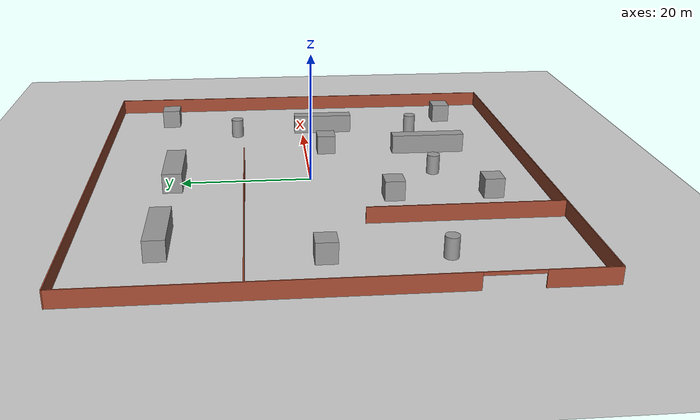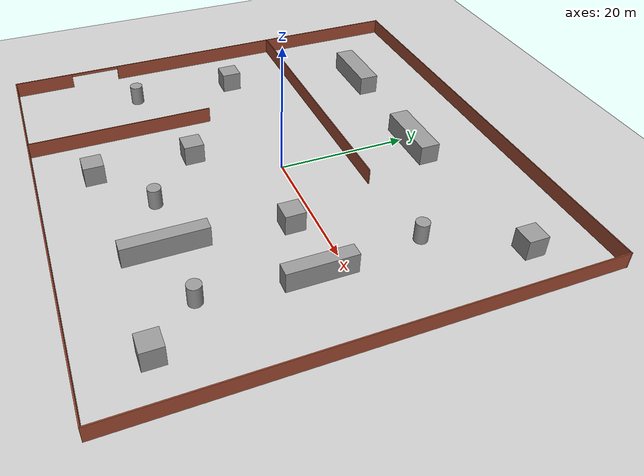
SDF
<sdf version="1.7">
 <world name="default">
  <light name="sun" type="directional">
   <pose>0 0 10 0 -0 0</pose>
   <diffuse>0.8 0.8 0.8 1</diffuse>
   <specular>0.2 0.2 0.2 1</specular>
   <attenuation>
    <range>1000</range>
    <constant>0.9</constant>
    <linear>0.01</linear>
    <quadratic>0.001</quadratic>
   </attenuation>
   <direction>-0.5 0.1 -0.9</direction>
   <spot><inner_angle>0</inner_angle><outer_angle>0</outer_angle><falloff>0</falloff></spot>
  </light>
  <model name="ground_plane">
   <static>1</static>
   <link name="link">
    <collision name="collision">
     <geometry><plane><normal>0 0 1</normal><size>100 100</size></plane></geometry>
     <surface>
      <contact><collide_bitmask>65535</collide_bitmask></contact>
      <friction><ode><mu>100</mu><mu2>50</mu2></ode></friction>
     </surface>
    </collision>
    <visual name="visual">
     <cast_shadows>0</cast_shadows>
     <geometry><plane><normal>0 0 1</normal><size>100 100</size></plane></geometry>
     <material>
      <script><uri>file://media/materials/scripts/gazebo.material</uri><name>Gazebo/Grey</name></script>
     </material>
    </visual>
   </link>
  </model>
  <gravity>0 0 -9.8</gravity>
  <magnetic_field>6e-06 2.3e-05 -4.2e-05</magnetic_field>
  <atmosphere type="adiabatic"/>
  <physics type="ode">
   <max_step_size>0.001</max_step_size>
   <real_time_factor>1</real_time_factor>
   <real_time_update_rate>1000</real_time_update_rate>
  </physics>
  <scene><ambient>0.4 0.4 0.4 1</ambient><background>0.7 0.7 0.7 1</background><shadows>1</shadows></scene>
  <spherical_coordinates>
   <surface_model>EARTH_WGS84</surface_model>
   <latitude_deg>0</latitude_deg>
   <longitude_deg>0</longitude_deg>
   <elevation>0</elevation>
   <heading_deg>0</heading_deg>
  </spherical_coordinates>
  <model name="Automan_factory">
   <pose>0.163273 -0.822577 0 0 -0 0</pose>
   <link name="Wall_0">
    <pose>-34.8066 -0.022736 0 0 -0 -1.5708</pose>
    <visual name="Wall_0_Visual_0">
     <pose>-8.60646 0 1.25 0 -0 0</pose>
     <geometry><box><size>51.0371 0.15 2.5</size></box></geometry>
     <material>
      <script><uri>file://media/materials/scripts/gazebo.material</uri><name>Gazebo/Bricks</name></script>
      <ambient>1 1 1 1</ambient>
     </material>
     <meta><layer>0</layer></meta>
    </visual>
    <collision name="Wall_0_Collision_0">
     <geometry><box><size>51.0371 0.15 2.5</size></box></geometry>
     <pose>-8.60646 0 1.25 0 -0 0</pose>
    </collision>
    <visual name="Wall_0_Visual_1">
     <pose>29.425 0 1.25 0 -0 0</pose>
     <geometry><box><size>9.39992 0.15 2.5</size></box></geometry>
     <material>
      <script><uri>file://media/materials/scripts/gazebo.material</uri><name>Gazebo/Bricks</name></script>
      <ambient>1 1 1 1</ambient>
     </material>
     <meta><layer>0</layer></meta>
    </visual>
    <collision name="Wall_0_Collision_1">
     <geometry><box><size>9.39992 0.15 2.5</size></box></geometry>
     <pose>29.425 0 1.25 0 -0 0</pose>
    </collision>
    <visual name="Wall_0_Visual_2">
     <pose>20.8186 0 2.25 0 -0 0</pose>
     <geometry><box><size>7.81299 0.15 0.5</size></box></geometry>
     <material>
      <script><uri>file://media/materials/scripts/gazebo.material</uri><name>Gazebo/Bricks</name></script>
      <ambient>1 1 1 1</ambient>
     </material>
     <meta><layer>0</layer></meta>
    </visual>
    <collision name="Wall_0_Collision_2">
     <geometry><box><size>7.81299 0.15 0.5</size></box></geometry>
     <pose>20.8186 0 2.25 0 -0 0</pose>
    </collision>
   </link>
   <link name="Wall_2">
    <collision name="Wall_2_Collision">
     <geometry><box><size>69.7632 0.15 2.5</size></box></geometry>
     <pose>0 0 1.25 0 -0 0</pose>
    </collision>
    <visual name="Wall_2_Visual">
     <pose>0 0 1.25 0 -0 0</pose>
     <geometry><box><size>69.7632 0.15 2.5</size></box></geometry>
     <material>
      <script><uri>file://media/materials/scripts/gazebo.material</uri><name>Gazebo/Bricks</name></script>
      <ambient>1 1 1 1</ambient>
     </material>
     <meta><layer>0</layer></meta>
    </visual>
    <pose>-2e-06 -34.05 0 0 -0 0.000653</pose>
   </link>
   <link name="Wall_27">
    <collision name="Wall_27_Collision">
     <geometry><box><size>28.5 0.15 2.5</size></box></geometry>
     <pose>0 0 1.25 0 -0 0</pose>
    </collision>
    <visual name="Wall_27_Visual">
     <pose>0 0 1.25 0 -0 0</pose>
     <geometry><box><size>28.5 0.15 2.5</size></box></geometry>
     <material>
      <script><uri>file://media/materials/scripts/gazebo.material</uri><name>Gazebo/Bricks</name></script>
      <ambient>1 1 1 1</ambient>
     </material>
     <meta><layer>0</layer></meta>
    </visual>
    <pose>-15.9813 -19.8691 0 0 -0 1.5708</pose>
   </link>
   <link name="Wall_29">
    <collision name="Wall_29_Collision">
     <geometry><box><size>42.75 0.15 2.5</size></box></geometry>
     <pose>0 0 1.25 0 -0 0</pose>
    </collision>
    <visual name="Wall_29_Visual">
     <pose>0 0 1.25 0 -0 0</pose>
     <geometry><box><size>42.75 0.15 2.5</size></box></geometry>
     <material>
      <script><uri>file://media/materials/scripts/gazebo.material</uri><name>Gazebo/Bricks</name></script>
      <ambient>1 1 1 1</ambient>
     </material>
     <meta><layer>0</layer></meta>
    </visual>
    <pose>-13.3654 11.1808 0 0 -0 0</pose>
   </link>
   <link name="Wall_3">
    <collision name="Wall_3_Collision">
     <geometry><box><size>68.25 0.15 2.5</size></box></geometry>
     <pose>0 0 1.25 0 -0 0</pose>
    </collision>
    <visual name="Wall_3_Visual">
     <pose>0 0 1.25 0 -0 0</pose>
     <geometry><box><size>68.25 0.15 2.5</size></box></geometry>
     <material>
      <script><uri>file://media/materials/scripts/gazebo.material</uri><name>Gazebo/Bricks</name></script>
      <ambient>1 1 1 1</ambient>
     </material>
     <meta><layer>0</layer></meta>
    </visual>
    <pose>34.8066 0.022736 0 0 -0 1.5708</pose>
   </link>
   <link name="Wall_4">
    <collision name="Wall_4_Collision">
     <geometry><box><size>69.7632 0.15 2.5</size></box></geometry>
     <pose>0 0 1.25 0 -0 0</pose>
    </collision>
    <visual name="Wall_4_Visual">
     <pose>0 0 1.25 0 -0 0</pose>
     <geometry><box><size>69.7632 0.15 2.5</size></box></geometry>
     <material>
      <script><uri>file://media/materials/scripts/gazebo.material</uri><name>Gazebo/Bricks</name></script>
      <ambient>1 1 1 1</ambient>
     </material>
     <meta><layer>0</layer></meta>
    </visual>
    <pose>-2e-06 34.05 0 0 -0 -3.14094</pose>
   </link>
   <static>1</static>
  </model>
  <model name="Automan_factory_with_obstacles.world">
   <link name="link_0_clone">
    <inertial>
     <mass>1</mass>
     <inertia><ixx>0.145833</ixx><ixy>0</ixy><ixz>0</ixz><iyy>0.145833</iyy><iyz>0</iyz><izz>0.125</izz></inertia>
    </inertial>
    <pose>28.3867 -2.06746 -0 0 -0 0</pose>
    <visual name="visual">
     <geometry><cylinder><radius>1</radius><length>5</length></cylinder></geometry>
     <material>
      <lighting>1</lighting>
      <script><uri>file://media/materials/scripts/gazebo.material</uri><name>Gazebo/Grey</name></script>
      <shader type="pixel"><normal_map>__default__</normal_map></shader>
      <ambient>0.3 0.3 0.3 1</ambient>
      <diffuse>0.7 0.7 0.7 1</diffuse>
      <specular>0.01 0.01 0.01 1</specular>
      <emissive>0 0 0 1</emissive>
     </material>
    </visual>
    <collision name="collision">
     <geometry><cylinder><radius>1</radius><length>5</length></cylinder></geometry>
     <surface>
      <friction>
       <ode><mu>1</mu><mu2>1</mu2><fdir1>0 0 0</fdir1><slip1>0</slip1><slip2>0</slip2></ode>
       <torsional>
        <coefficient>1</coefficient>
        <patch_radius>0</patch_radius>
        <surface_radius>0</surface_radius>
        <use_patch_radius>1</use_patch_radius>
        <ode><slip>0</slip></ode>
       </torsional>
      </friction>
      <bounce><restitution_coefficient>0</restitution_coefficient><threshold>1e+06</threshold></bounce>
      <contact>
       <collide_without_contact>0</collide_without_contact>
       <collide_without_contact_bitmask>1</collide_without_contact_bitmask>
       <collide_bitmask>1</collide_bitmask>
       <ode>
        <soft_cfm>0</soft_cfm>
        <soft_erp>0.2</soft_erp>
        <kp>1e+13</kp>
        <kd>1</kd>
        <max_vel>0.01</max_vel>
        <min_depth>0</min_depth>
       </ode>
       <bullet>
        <split_impulse>1</split_impulse>
        <split_impulse_penetration_threshold>-0.01</split_impulse_penetration_threshold>
        <soft_cfm>0</soft_cfm>
        <soft_erp>0.2</soft_erp>
        <kp>1e+13</kp>
        <kd>1</kd>
       </bullet>
      </contact>
     </surface>
    </collision>
   </link>
   <link name="link_0_clone_0">
    <inertial>
     <mass>1</mass>
     <inertia><ixx>0.145833</ixx><ixy>0</ixy><ixz>0</ixz><iyy>0.145833</iyy><iyz>0</iyz><izz>0.125</izz></inertia>
    </inertial>
    <pose>47.7915 29.0445 0 0 -0 0</pose>
    <visual name="visual">
     <geometry><cylinder><radius>1</radius><length>5</length></cylinder></geometry>
     <material>
      <lighting>1</lighting>
      <script><uri>file://media/materials/scripts/gazebo.material</uri><name>Gazebo/Grey</name></script>
      <shader type="pixel"><normal_map>__default__</normal_map></shader>
      <ambient>0.3 0.3 0.3 1</ambient>
      <diffuse>0.7 0.7 0.7 1</diffuse>
      <specular>0.01 0.01 0.01 1</specular>
      <emissive>0 0 0 1</emissive>
     </material>
    </visual>
    <collision name="collision">
     <geometry><cylinder><radius>1</radius><length>5</length></cylinder></geometry>
     <surface>
      <friction>
       <ode><mu>1</mu><mu2>1</mu2><fdir1>0 0 0</fdir1><slip1>0</slip1><slip2>0</slip2></ode>
       <torsional>
        <coefficient>1</coefficient>
        <patch_radius>0</patch_radius>
        <surface_radius>0</surface_radius>
        <use_patch_radius>1</use_patch_radius>
        <ode><slip>0</slip></ode>
       </torsional>
      </friction>
      <bounce><restitution_coefficient>0</restitution_coefficient><threshold>1e+06</threshold></bounce>
      <contact>
       <collide_without_contact>0</collide_without_contact>
       <collide_without_contact_bitmask>1</collide_without_contact_bitmask>
       <collide_bitmask>1</collide_bitmask>
       <ode>
        <soft_cfm>0</soft_cfm>
        <soft_erp>0.2</soft_erp>
        <kp>1e+13</kp>
        <kd>1</kd>
        <max_vel>0.01</max_vel>
        <min_depth>0</min_depth>
       </ode>
       <bullet>
        <split_impulse>1</split_impulse>
        <split_impulse_penetration_threshold>-0.01</split_impulse_penetration_threshold>
        <soft_cfm>0</soft_cfm>
        <soft_erp>0.2</soft_erp>
        <kp>1e+13</kp>
        <kd>1</kd>
       </bullet>
      </contact>
     </surface>
    </collision>
   </link>
   <link name="link_0_clone_clone">
    <inertial>
     <mass>1</mass>
     <inertia><ixx>0.145833</ixx><ixy>0</ixy><ixz>0</ixz><iyy>0.145833</iyy><iyz>0</iyz><izz>0.125</izz></inertia>
    </inertial>
    <pose>47.8041 -1.80398 -0 0 -0 0</pose>
    <visual name="visual">
     <geometry><cylinder><radius>1</radius><length>5</length></cylinder></geometry>
     <material>
      <lighting>1</lighting>
      <script><uri>file://media/materials/scripts/gazebo.material</uri><name>Gazebo/Grey</name></script>
      <shader type="pixel"><normal_map>__default__</normal_map></shader>
      <ambient>0.3 0.3 0.3 1</ambient>
      <diffuse>0.7 0.7 0.7 1</diffuse>
      <specular>0.01 0.01 0.01 1</specular>
      <emissive>0 0 0 1</emissive>
     </material>
    </visual>
    <collision name="collision">
     <geometry><cylinder><radius>1</radius><length>5</length></cylinder></geometry>
     <surface>
      <friction>
       <ode><mu>1</mu><mu2>1</mu2><fdir1>0 0 0</fdir1><slip1>0</slip1><slip2>0</slip2></ode>
       <torsional>
        <coefficient>1</coefficient>
        <patch_radius>0</patch_radius>
        <surface_radius>0</surface_radius>
        <use_patch_radius>1</use_patch_radius>
        <ode><slip>0</slip></ode>
       </torsional>
      </friction>
      <bounce><restitution_coefficient>0</restitution_coefficient><threshold>1e+06</threshold></bounce>
      <contact>
       <collide_without_contact>0</collide_without_contact>
       <collide_without_contact_bitmask>1</collide_without_contact_bitmask>
       <collide_bitmask>1</collide_bitmask>
       <ode>
        <soft_cfm>0</soft_cfm>
        <soft_erp>0.2</soft_erp>
        <kp>1e+13</kp>
        <kd>1</kd>
        <max_vel>0.01</max_vel>
        <min_depth>0</min_depth>
       </ode>
       <bullet>
        <split_impulse>1</split_impulse>
        <split_impulse_penetration_threshold>-0.01</split_impulse_penetration_threshold>
        <soft_cfm>0</soft_cfm>
        <soft_erp>0.2</soft_erp>
        <kp>1e+13</kp>
        <kd>1</kd>
       </bullet>
      </contact>
     </surface>
    </collision>
   </link>
   <link name="link_0_clone_clone_0">
    <inertial>
     <mass>1</mass>
     <inertia><ixx>0.145833</ixx><ixy>0</ixy><ixz>0</ixz><iyy>0.145833</iyy><iyz>0</iyz><izz>0.125</izz></inertia>
    </inertial>
    <pose>0.679626 1.40047 0 0 -0 0</pose>
    <visual name="visual">
     <geometry><cylinder><radius>1</radius><length>5</length></cylinder></geometry>
     <material>
      <lighting>1</lighting>
      <script><uri>file://media/materials/scripts/gazebo.material</uri><name>Gazebo/Grey</name></script>
      <shader type="pixel"><normal_map>__default__</normal_map></shader>
      <ambient>0.3 0.3 0.3 1</ambient>
      <diffuse>0.7 0.7 0.7 1</diffuse>
      <specular>0.01 0.01 0.01 1</specular>
      <emissive>0 0 0 1</emissive>
     </material>
    </visual>
    <collision name="collision">
     <geometry><cylinder><radius>1</radius><length>5</length></cylinder></geometry>
     <surface>
      <friction>
       <ode><mu>1</mu><mu2>1</mu2><fdir1>0 0 0</fdir1><slip1>0</slip1><slip2>0</slip2></ode>
       <torsional>
        <coefficient>1</coefficient>
        <patch_radius>0</patch_radius>
        <surface_radius>0</surface_radius>
        <use_patch_radius>1</use_patch_radius>
        <ode><slip>0</slip></ode>
       </torsional>
      </friction>
      <bounce><restitution_coefficient>0</restitution_coefficient><threshold>1e+06</threshold></bounce>
      <contact>
       <collide_without_contact>0</collide_without_contact>
       <collide_without_contact_bitmask>1</collide_without_contact_bitmask>
       <collide_bitmask>1</collide_bitmask>
       <ode>
        <soft_cfm>0</soft_cfm>
        <soft_erp>0.2</soft_erp>
        <kp>1e+13</kp>
        <kd>1</kd>
        <max_vel>0.01</max_vel>
        <min_depth>0</min_depth>
       </ode>
       <bullet>
        <split_impulse>1</split_impulse>
        <split_impulse_penetration_threshold>-0.01</split_impulse_penetration_threshold>
        <soft_cfm>0</soft_cfm>
        <soft_erp>0.2</soft_erp>
        <kp>1e+13</kp>
        <kd>1</kd>
       </bullet>
      </contact>
     </surface>
    </collision>
   </link>
   <link name="link_1_clone">
    <inertial>
     <mass>10</mass>
     <inertia><ixx>140.8</ixx><ixy>0</ixy><ixz>0</ixz><iyy>21.67</iyy><iyz>0</iyz><izz>120.8</izz></inertia>
    </inertial>
    <pose>37.9966 -3.01725 0 0 -0 0</pose>
    <visual name="visual">
     <geometry><box><size>2 12 5</size></box></geometry>
     <material>
      <lighting>1</lighting>
      <script><uri>file://media/materials/scripts/gazebo.material</uri><name>Gazebo/Grey</name></script>
      <shader type="pixel"><normal_map>__default__</normal_map></shader>
      <ambient>0.3 0.3 0.3 1</ambient>
      <diffuse>0.7 0.7 0.7 1</diffuse>
      <specular>0.01 0.01 0.01 1</specular>
      <emissive>0 0 0 1</emissive>
     </material>
    </visual>
    <collision name="collision">
     <geometry><box><size>2 12 5</size></box></geometry>
     <surface>
      <friction>
       <ode><mu>1</mu><mu2>1</mu2><fdir1>0 0 0</fdir1><slip1>0</slip1><slip2>0</slip2></ode>
       <torsional>
        <coefficient>1</coefficient>
        <patch_radius>0</patch_radius>
        <surface_radius>0</surface_radius>
        <use_patch_radius>1</use_patch_radius>
        <ode><slip>0</slip></ode>
       </torsional>
      </friction>
      <bounce><restitution_coefficient>0</restitution_coefficient><threshold>1e+06</threshold></bounce>
      <contact>
       <collide_without_contact>0</collide_without_contact>
       <collide_without_contact_bitmask>1</collide_without_contact_bitmask>
       <collide_bitmask>1</collide_bitmask>
       <ode>
        <soft_cfm>0</soft_cfm>
        <soft_erp>0.2</soft_erp>
        <kp>1e+13</kp>
        <kd>1</kd>
        <max_vel>0.01</max_vel>
        <min_depth>0</min_depth>
       </ode>
       <bullet>
        <split_impulse>1</split_impulse>
        <split_impulse_penetration_threshold>-0.01</split_impulse_penetration_threshold>
        <soft_cfm>0</soft_cfm>
        <soft_erp>0.2</soft_erp>
        <kp>1e+13</kp>
        <kd>1</kd>
       </bullet>
      </contact>
     </surface>
    </collision>
   </link>
   <link name="link_1_clone_0">
    <inertial>
     <mass>10</mass>
     <inertia><ixx>140.8</ixx><ixy>0</ixy><ixz>0</ixz><iyy>21.67</iyy><iyz>0</iyz><izz>120.8</izz></inertia>
    </inertial>
    <pose>49.2832 13.8531 -0 0 -0 0</pose>
    <visual name="visual">
     <geometry><box><size>2 10 5</size></box></geometry>
     <material>
      <lighting>1</lighting>
      <script><uri>file://media/materials/scripts/gazebo.material</uri><name>Gazebo/Grey</name></script>
      <shader type="pixel"><normal_map>__default__</normal_map></shader>
      <ambient>0.3 0.3 0.3 1</ambient>
      <diffuse>0.7 0.7 0.7 1</diffuse>
      <specular>0.01 0.01 0.01 1</specular>
      <emissive>0 0 0 1</emissive>
     </material>
    </visual>
    <collision name="collision">
     <geometry><box><size>2 10 5</size></box></geometry>
     <surface>
      <friction>
       <ode><mu>1</mu><mu2>1</mu2><fdir1>0 0 0</fdir1><slip1>0</slip1><slip2>0</slip2></ode>
       <torsional>
        <coefficient>1</coefficient>
        <patch_radius>0</patch_radius>
        <surface_radius>0</surface_radius>
        <use_patch_radius>1</use_patch_radius>
        <ode><slip>0</slip></ode>
       </torsional>
      </friction>
      <bounce><restitution_coefficient>0</restitution_coefficient><threshold>1e+06</threshold></bounce>
      <contact>
       <collide_without_contact>0</collide_without_contact>
       <collide_without_contact_bitmask>1</collide_without_contact_bitmask>
       <collide_bitmask>1</collide_bitmask>
       <ode>
        <soft_cfm>0</soft_cfm>
        <soft_erp>0.2</soft_erp>
        <kp>1e+13</kp>
        <kd>1</kd>
        <max_vel>0.01</max_vel>
        <min_depth>0</min_depth>
       </ode>
       <bullet>
        <split_impulse>1</split_impulse>
        <split_impulse_penetration_threshold>-0.01</split_impulse_penetration_threshold>
        <soft_cfm>0</soft_cfm>
        <soft_erp>0.2</soft_erp>
        <kp>1e+13</kp>
        <kd>1</kd>
       </bullet>
      </contact>
     </surface>
    </collision>
   </link>
   <link name="link_2_clone_clone">
    <inertial>
     <mass>1</mass>
     <inertia>
      <ixx>0.166667</ixx>
      <ixy>0</ixy>
      <ixz>0</ixz>
      <iyy>0.166667</iyy>
      <iyz>0</iyz>
      <izz>0.166667</izz>
     </inertia>
    </inertial>
    <pose>54.0115 -8.61499 -0 0 -0 0</pose>
    <visual name="visual">
     <geometry><box><size>3 3 5</size></box></geometry>
     <material>
      <lighting>1</lighting>
      <script><uri>file://media/materials/scripts/gazebo.material</uri><name>Gazebo/Grey</name></script>
      <shader type="pixel"><normal_map>__default__</normal_map></shader>
      <ambient>0.3 0.3 0.3 1</ambient>
      <diffuse>0.7 0.7 0.7 1</diffuse>
      <specular>0.01 0.01 0.01 1</specular>
      <emissive>0 0 0 1</emissive>
     </material>
    </visual>
    <collision name="collision">
     <geometry><box><size>3 3 5</size></box></geometry>
     <surface>
      <friction>
       <ode><mu>1</mu><mu2>1</mu2><fdir1>0 0 0</fdir1><slip1>0</slip1><slip2>0</slip2></ode>
       <torsional>
        <coefficient>1</coefficient>
        <patch_radius>0</patch_radius>
        <surface_radius>0</surface_radius>
        <use_patch_radius>1</use_patch_radius>
        <ode><slip>0</slip></ode>
       </torsional>
      </friction>
      <bounce><restitution_coefficient>0</restitution_coefficient><threshold>1e+06</threshold></bounce>
      <contact>
       <collide_without_contact>0</collide_without_contact>
       <collide_without_contact_bitmask>1</collide_without_contact_bitmask>
       <collide_bitmask>1</collide_bitmask>
       <ode>
        <soft_cfm>0</soft_cfm>
        <soft_erp>0.2</soft_erp>
        <kp>1e+13</kp>
        <kd>1</kd>
        <max_vel>0.01</max_vel>
        <min_depth>0</min_depth>
       </ode>
       <bullet>
        <split_impulse>1</split_impulse>
        <split_impulse_penetration_threshold>-0.01</split_impulse_penetration_threshold>
        <soft_cfm>0</soft_cfm>
        <soft_erp>0.2</soft_erp>
        <kp>1e+13</kp>
        <kd>1</kd>
       </bullet>
      </contact>
     </surface>
    </collision>
   </link>
   <link name="link_2_clone_clone_0_clone_clone">
    <inertial>
     <mass>1</mass>
     <inertia>
      <ixx>0.166667</ixx>
      <ixy>0</ixy>
      <ixz>0</ixz>
      <iyy>0.166667</iyy>
      <iyz>0</iyz>
      <izz>0.166667</izz>
     </inertia>
    </inertial>
    <pose>19.3761 -9.07518 -0 0 -0 0</pose>
    <visual name="visual">
     <geometry><box><size>3 3 5</size></box></geometry>
     <material>
      <lighting>1</lighting>
      <script><uri>file://media/materials/scripts/gazebo.material</uri><name>Gazebo/Grey</name></script>
      <shader type="pixel"><normal_map>__default__</normal_map></shader>
      <ambient>0.3 0.3 0.3 1</ambient>
      <diffuse>0.7 0.7 0.7 1</diffuse>
      <specular>0.01 0.01 0.01 1</specular>
      <emissive>0 0 0 1</emissive>
     </material>
    </visual>
    <collision name="collision">
     <geometry><box><size>3 3 5</size></box></geometry>
     <surface>
      <friction>
       <ode><mu>1</mu><mu2>1</mu2><fdir1>0 0 0</fdir1><slip1>0</slip1><slip2>0</slip2></ode>
       <torsional>
        <coefficient>1</coefficient>
        <patch_radius>0</patch_radius>
        <surface_radius>0</surface_radius>
        <use_patch_radius>1</use_patch_radius>
        <ode><slip>0</slip></ode>
       </torsional>
      </friction>
      <bounce><restitution_coefficient>0</restitution_coefficient><threshold>1e+06</threshold></bounce>
      <contact>
       <collide_without_contact>0</collide_without_contact>
       <collide_without_contact_bitmask>1</collide_without_contact_bitmask>
       <collide_bitmask>1</collide_bitmask>
       <ode>
        <soft_cfm>0</soft_cfm>
        <soft_erp>0.2</soft_erp>
        <kp>1e+13</kp>
        <kd>1</kd>
        <max_vel>0.01</max_vel>
        <min_depth>0</min_depth>
       </ode>
       <bullet>
        <split_impulse>1</split_impulse>
        <split_impulse_penetration_threshold>-0.01</split_impulse_penetration_threshold>
        <soft_cfm>0</soft_cfm>
        <soft_erp>0.2</soft_erp>
        <kp>1e+13</kp>
        <kd>1</kd>
       </bullet>
      </contact>
     </surface>
    </collision>
   </link>
   <link name="link_2_clone_clone_clone">
    <inertial>
     <mass>1</mass>
     <inertia>
      <ixx>0.166667</ixx>
      <ixy>0</ixy>
      <ixz>0</ixz>
      <iyy>0.166667</iyy>
      <iyz>0</iyz>
      <izz>0.166667</izz>
     </inertia>
    </inertial>
    <pose>39.1699 14.1036 -0 0 -0 0</pose>
    <visual name="visual">
     <geometry><box><size>3 3 5</size></box></geometry>
     <material>
      <lighting>1</lighting>
      <script><uri>file://media/materials/scripts/gazebo.material</uri><name>Gazebo/Grey</name></script>
      <shader type="pixel"><normal_map>__default__</normal_map></shader>
      <ambient>0.3 0.3 0.3 1</ambient>
      <diffuse>0.7 0.7 0.7 1</diffuse>
      <specular>0.01 0.01 0.01 1</specular>
      <emissive>0 0 0 1</emissive>
     </material>
    </visual>
    <collision name="collision">
     <geometry><box><size>3 3 5</size></box></geometry>
     <surface>
      <friction>
       <ode><mu>1</mu><mu2>1</mu2><fdir1>0 0 0</fdir1><slip1>0</slip1><slip2>0</slip2></ode>
       <torsional>
        <coefficient>1</coefficient>
        <patch_radius>0</patch_radius>
        <surface_radius>0</surface_radius>
        <use_patch_radius>1</use_patch_radius>
        <ode><slip>0</slip></ode>
       </torsional>
      </friction>
      <bounce><restitution_coefficient>0</restitution_coefficient><threshold>1e+06</threshold></bounce>
      <contact>
       <collide_without_contact>0</collide_without_contact>
       <collide_without_contact_bitmask>1</collide_without_contact_bitmask>
       <collide_bitmask>1</collide_bitmask>
       <ode>
        <soft_cfm>0</soft_cfm>
        <soft_erp>0.2</soft_erp>
        <kp>1e+13</kp>
        <kd>1</kd>
        <max_vel>0.01</max_vel>
        <min_depth>0</min_depth>
       </ode>
       <bullet>
        <split_impulse>1</split_impulse>
        <split_impulse_penetration_threshold>-0.01</split_impulse_penetration_threshold>
        <soft_cfm>0</soft_cfm>
        <soft_erp>0.2</soft_erp>
        <kp>1e+13</kp>
        <kd>1</kd>
       </bullet>
      </contact>
     </surface>
    </collision>
   </link>
   <link name="link_2_clone_clone_clone_0">
    <inertial>
     <mass>1</mass>
     <inertia>
      <ixx>0.166667</ixx>
      <ixy>0</ixy>
      <ixz>0</ixz>
      <iyy>0.166667</iyy>
      <iyz>0</iyz>
      <izz>0.166667</izz>
     </inertia>
    </inertial>
    <pose>19.5258 5.76516 -0 0 -0 0</pose>
    <visual name="visual">
     <geometry><box><size>3 3 5</size></box></geometry>
     <material>
      <lighting>1</lighting>
      <script><uri>file://media/materials/scripts/gazebo.material</uri><name>Gazebo/Grey</name></script>
      <shader type="pixel"><normal_map>__default__</normal_map></shader>
      <ambient>0.3 0.3 0.3 1</ambient>
      <diffuse>0.7 0.7 0.7 1</diffuse>
      <specular>0.01 0.01 0.01 1</specular>
      <emissive>0 0 0 1</emissive>
     </material>
    </visual>
    <collision name="collision">
     <geometry><box><size>3 3 5</size></box></geometry>
     <surface>
      <friction>
       <ode><mu>1</mu><mu2>1</mu2><fdir1>0 0 0</fdir1><slip1>0</slip1><slip2>0</slip2></ode>
       <torsional>
        <coefficient>1</coefficient>
        <patch_radius>0</patch_radius>
        <surface_radius>0</surface_radius>
        <use_patch_radius>1</use_patch_radius>
        <ode><slip>0</slip></ode>
       </torsional>
      </friction>
      <bounce><restitution_coefficient>0</restitution_coefficient><threshold>1e+06</threshold></bounce>
      <contact>
       <collide_without_contact>0</collide_without_contact>
       <collide_without_contact_bitmask>1</collide_without_contact_bitmask>
       <collide_bitmask>1</collide_bitmask>
       <ode>
        <soft_cfm>0</soft_cfm>
        <soft_erp>0.2</soft_erp>
        <kp>1e+13</kp>
        <kd>1</kd>
        <max_vel>0.01</max_vel>
        <min_depth>0</min_depth>
       </ode>
       <bullet>
        <split_impulse>1</split_impulse>
        <split_impulse_penetration_threshold>-0.01</split_impulse_penetration_threshold>
        <soft_cfm>0</soft_cfm>
        <soft_erp>0.2</soft_erp>
        <kp>1e+13</kp>
        <kd>1</kd>
       </bullet>
      </contact>
     </surface>
    </collision>
   </link>
   <link name="link_2_clone_clone_clone_0_clone">
    <inertial>
     <mass>1</mass>
     <inertia>
      <ixx>0.166667</ixx>
      <ixy>0</ixy>
      <ixz>0</ixz>
      <iyy>0.166667</iyy>
      <iyz>0</iyz>
      <izz>0.166667</izz>
     </inertia>
    </inertial>
    <pose>1.36044 17.5154 0 0 -0 0</pose>
    <visual name="visual">
     <geometry><box><size>3 3 5</size></box></geometry>
     <material>
      <lighting>1</lighting>
      <script><uri>file://media/materials/scripts/gazebo.material</uri><name>Gazebo/Grey</name></script>
      <shader type="pixel"><normal_map>__default__</normal_map></shader>
      <ambient>0.3 0.3 0.3 1</ambient>
      <diffuse>0.7 0.7 0.7 1</diffuse>
      <specular>0.01 0.01 0.01 1</specular>
      <emissive>0 0 0 1</emissive>
     </material>
    </visual>
    <collision name="collision">
     <geometry><box><size>3 3 5</size></box></geometry>
     <surface>
      <friction>
       <ode><mu>1</mu><mu2>1</mu2><fdir1>0 0 0</fdir1><slip1>0</slip1><slip2>0</slip2></ode>
       <torsional>
        <coefficient>1</coefficient>
        <patch_radius>0</patch_radius>
        <surface_radius>0</surface_radius>
        <use_patch_radius>1</use_patch_radius>
        <ode><slip>0</slip></ode>
       </torsional>
      </friction>
      <bounce><restitution_coefficient>0</restitution_coefficient><threshold>1e+06</threshold></bounce>
      <contact>
       <collide_without_contact>0</collide_without_contact>
       <collide_without_contact_bitmask>1</collide_without_contact_bitmask>
       <collide_bitmask>1</collide_bitmask>
       <ode>
        <soft_cfm>0</soft_cfm>
        <soft_erp>0.2</soft_erp>
        <kp>1e+13</kp>
        <kd>1</kd>
        <max_vel>0.01</max_vel>
        <min_depth>0</min_depth>
       </ode>
       <bullet>
        <split_impulse>1</split_impulse>
        <split_impulse_penetration_threshold>-0.01</split_impulse_penetration_threshold>
        <soft_cfm>0</soft_cfm>
        <soft_erp>0.2</soft_erp>
        <kp>1e+13</kp>
        <kd>1</kd>
       </bullet>
      </contact>
     </surface>
    </collision>
   </link>
   <link name="link_2_clone_clone_clone_1">
    <inertial>
     <mass>1</mass>
     <inertia>
      <ixx>0.166667</ixx>
      <ixy>0</ixy>
      <ixz>0</ixz>
      <iyy>0.166667</iyy>
      <iyz>0</iyz>
      <izz>0.166667</izz>
     </inertia>
    </inertial>
    <pose>54.5798 41.1026 0 0 -0 0</pose>
    <visual name="visual">
     <geometry><box><size>3 3 5</size></box></geometry>
     <material>
      <lighting>1</lighting>
      <script><uri>file://media/materials/scripts/gazebo.material</uri><name>Gazebo/Grey</name></script>
      <shader type="pixel"><normal_map>__default__</normal_map></shader>
      <ambient>0.3 0.3 0.3 1</ambient>
      <diffuse>0.7 0.7 0.7 1</diffuse>
      <specular>0.01 0.01 0.01 1</specular>
      <emissive>0 0 0 1</emissive>
     </material>
    </visual>
    <collision name="collision">
     <geometry><box><size>3 3 5</size></box></geometry>
     <surface>
      <friction>
       <ode><mu>1</mu><mu2>1</mu2><fdir1>0 0 0</fdir1><slip1>0</slip1><slip2>0</slip2></ode>
       <torsional>
        <coefficient>1</coefficient>
        <patch_radius>0</patch_radius>
        <surface_radius>0</surface_radius>
        <use_patch_radius>1</use_patch_radius>
        <ode><slip>0</slip></ode>
       </torsional>
      </friction>
      <bounce><restitution_coefficient>0</restitution_coefficient><threshold>1e+06</threshold></bounce>
      <contact>
       <collide_without_contact>0</collide_without_contact>
       <collide_without_contact_bitmask>1</collide_without_contact_bitmask>
       <collide_bitmask>1</collide_bitmask>
       <ode>
        <soft_cfm>0</soft_cfm>
        <soft_erp>0.2</soft_erp>
        <kp>1e+13</kp>
        <kd>1</kd>
        <max_vel>0.01</max_vel>
        <min_depth>0</min_depth>
       </ode>
       <bullet>
        <split_impulse>1</split_impulse>
        <split_impulse_penetration_threshold>-0.01</split_impulse_penetration_threshold>
        <soft_cfm>0</soft_cfm>
        <soft_erp>0.2</soft_erp>
        <kp>1e+13</kp>
        <kd>1</kd>
       </bullet>
      </contact>
     </surface>
    </collision>
   </link>
   <link name="link_2_clone_clone_clone_1_clone_clone">
    <inertial>
     <mass>10</mass>
     <inertia><ixx>140.8</ixx><ixy>0</ixy><ixz>0</ixz><iyy>21.67</iyy><iyz>0</iyz><izz>120.8</izz></inertia>
    </inertial>
    <pose>7.14944 39.1799 0 0 -0 0</pose>
    <visual name="visual">
     <geometry><box><size>10 3 5</size></box></geometry>
     <material>
      <lighting>1</lighting>
      <script><uri>file://media/materials/scripts/gazebo.material</uri><name>Gazebo/Grey</name></script>
      <shader type="pixel"><normal_map>__default__</normal_map></shader>
      <ambient>0.3 0.3 0.3 1</ambient>
      <diffuse>0.7 0.7 0.7 1</diffuse>
      <specular>0.01 0.01 0.01 1</specular>
      <emissive>0 0 0 1</emissive>
     </material>
    </visual>
    <collision name="collision">
     <geometry><box><size>10 3 5</size></box></geometry>
     <surface>
      <friction>
       <ode><mu>1</mu><mu2>1</mu2><fdir1>0 0 0</fdir1><slip1>0</slip1><slip2>0</slip2></ode>
       <torsional>
        <coefficient>1</coefficient>
        <patch_radius>0</patch_radius>
        <surface_radius>0</surface_radius>
        <use_patch_radius>1</use_patch_radius>
        <ode><slip>0</slip></ode>
       </torsional>
      </friction>
      <bounce><restitution_coefficient>0</restitution_coefficient><threshold>1e+06</threshold></bounce>
      <contact>
       <collide_without_contact>0</collide_without_contact>
       <collide_without_contact_bitmask>1</collide_without_contact_bitmask>
       <collide_bitmask>1</collide_bitmask>
       <ode>
        <soft_cfm>0</soft_cfm>
        <soft_erp>0.2</soft_erp>
        <kp>1e+13</kp>
        <kd>1</kd>
        <max_vel>0.01</max_vel>
        <min_depth>0</min_depth>
       </ode>
       <bullet>
        <split_impulse>1</split_impulse>
        <split_impulse_penetration_threshold>-0.01</split_impulse_penetration_threshold>
        <soft_cfm>0</soft_cfm>
        <soft_erp>0.2</soft_erp>
        <kp>1e+13</kp>
        <kd>1</kd>
       </bullet>
      </contact>
     </surface>
    </collision>
   </link>
   <link name="link_2_clone_clone_clone_1_clone_clone_clone">
    <inertial>
     <mass>10</mass>
     <inertia><ixx>140.8</ixx><ixy>0</ixy><ixz>0</ixz><iyy>21.67</iyy><iyz>0</iyz><izz>120.8</izz></inertia>
    </inertial>
    <pose>28.4564 38.6388 0 0 -0 0</pose>
    <visual name="visual">
     <geometry><box><size>10 3 5</size></box></geometry>
     <material>
      <lighting>1</lighting>
      <script><uri>file://media/materials/scripts/gazebo.material</uri><name>Gazebo/Grey</name></script>
      <shader type="pixel"><normal_map>__default__</normal_map></shader>
      <ambient>0.3 0.3 0.3 1</ambient>
      <diffuse>0.7 0.7 0.7 1</diffuse>
      <specular>0.01 0.01 0.01 1</specular>
      <emissive>0 0 0 1</emissive>
     </material>
    </visual>
    <collision name="collision">
     <geometry><box><size>10 3 5</size></box></geometry>
     <surface>
      <friction>
       <ode><mu>1</mu><mu2>1</mu2><fdir1>0 0 0</fdir1><slip1>0</slip1><slip2>0</slip2></ode>
       <torsional>
        <coefficient>1</coefficient>
        <patch_radius>0</patch_radius>
        <surface_radius>0</surface_radius>
        <use_patch_radius>1</use_patch_radius>
        <ode><slip>0</slip></ode>
       </torsional>
      </friction>
      <bounce><restitution_coefficient>0</restitution_coefficient><threshold>1e+06</threshold></bounce>
      <contact>
       <collide_without_contact>0</collide_without_contact>
       <collide_without_contact_bitmask>1</collide_without_contact_bitmask>
       <collide_bitmask>1</collide_bitmask>
       <ode>
        <soft_cfm>0</soft_cfm>
        <soft_erp>0.2</soft_erp>
        <kp>1e+13</kp>
        <kd>1</kd>
        <max_vel>0.01</max_vel>
        <min_depth>0</min_depth>
       </ode>
       <bullet>
        <split_impulse>1</split_impulse>
        <split_impulse_penetration_threshold>-0.01</split_impulse_penetration_threshold>
        <soft_cfm>0</soft_cfm>
        <soft_erp>0.2</soft_erp>
        <kp>1e+13</kp>
        <kd>1</kd>
       </bullet>
      </contact>
     </surface>
    </collision>
   </link>
   <static>0</static>
   <pose>-26.7123 -17.523 0.5 0 -0 0</pose>
  </model>
 </world>
</sdf>
